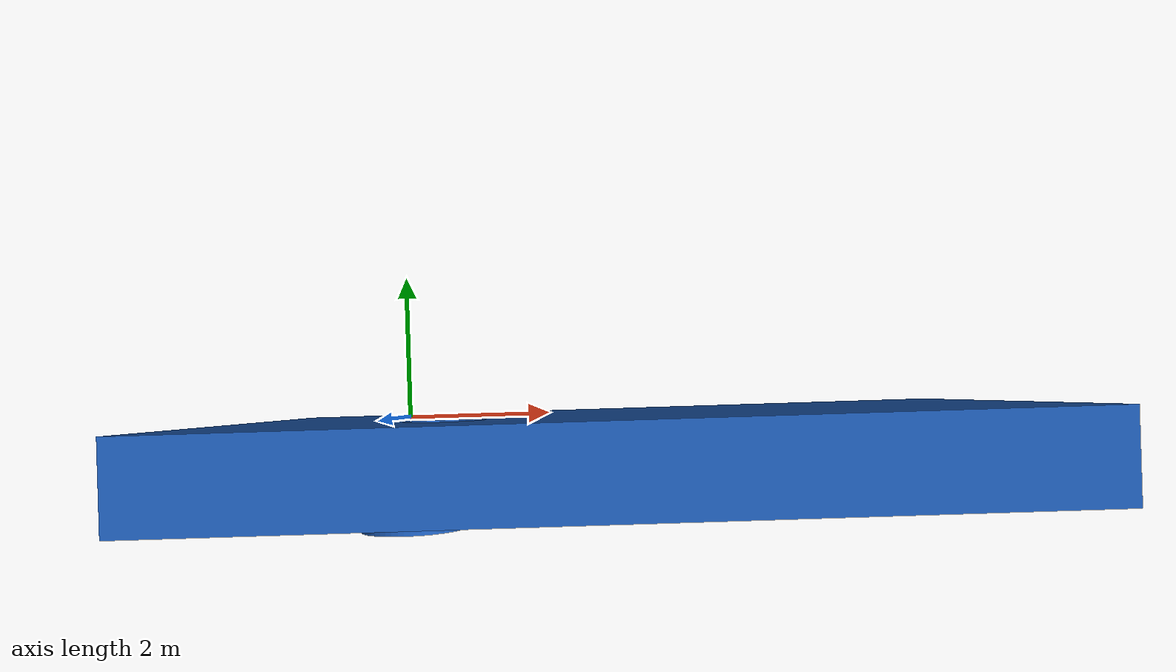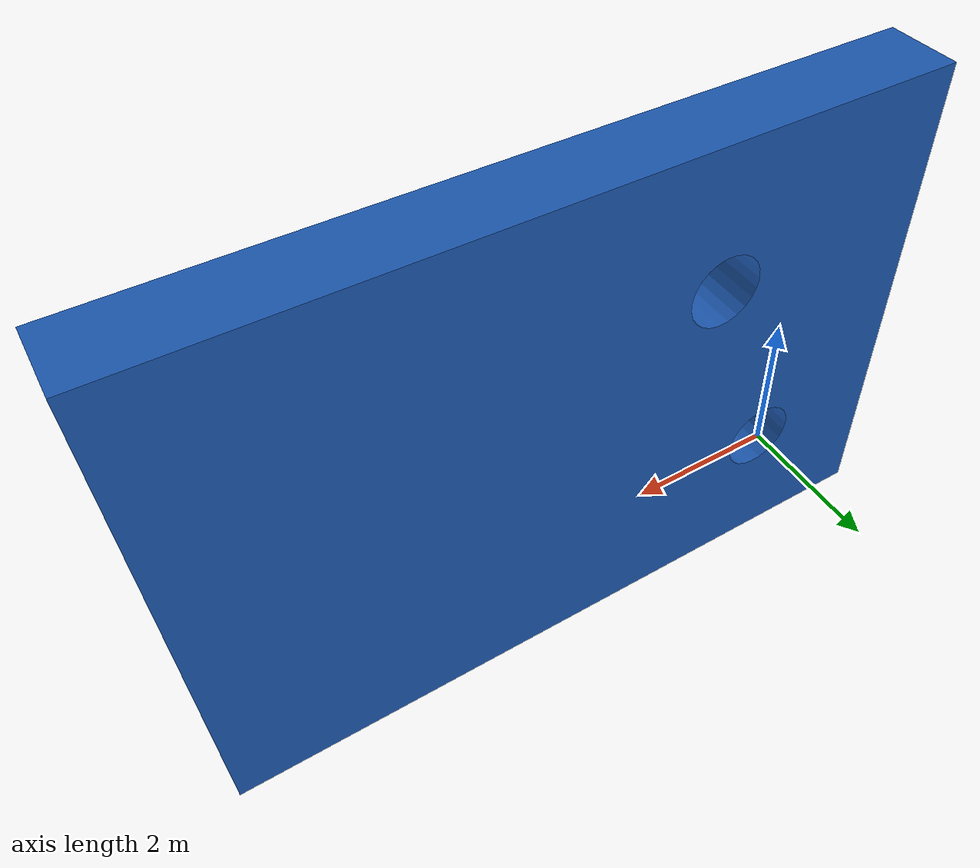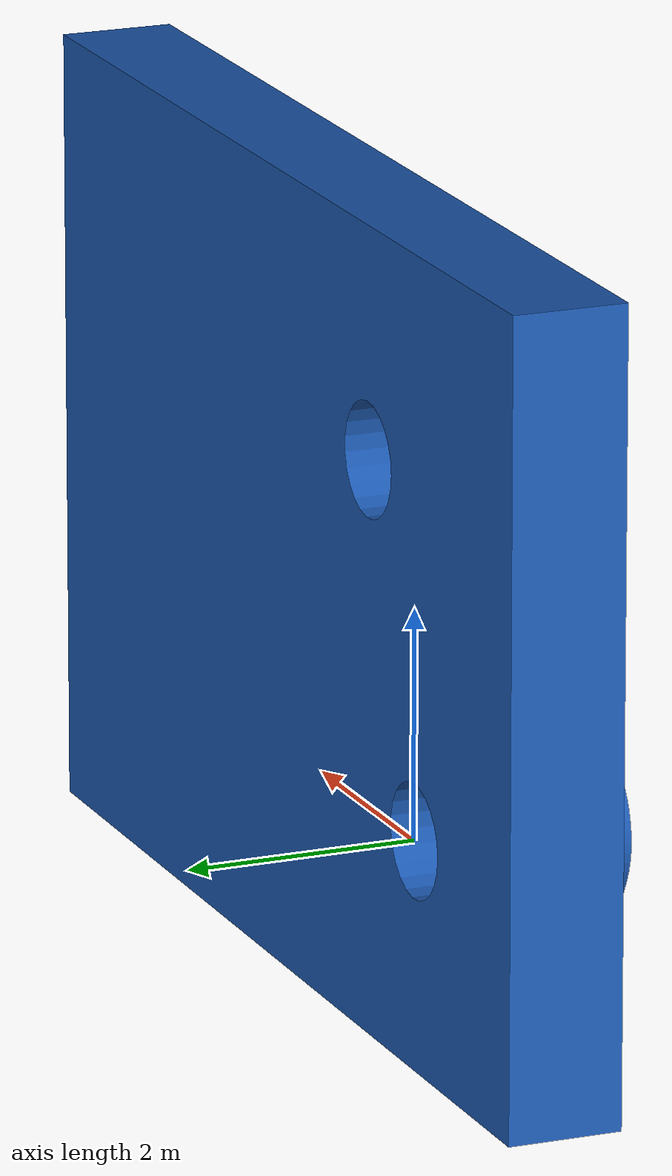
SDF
<?xml version='1.0'?>
<sdf version="1.6">
    <world name="default">
        <model name="oswald">
            <link name='body'>
                <inertial>
                    <mass>1</mass>
                    <inertia>
                        <ixx>0.166667</ixx>
                        <ixy>0</ixy>
                        <ixz>0</ixz>
                        <iyy>0.166667</iyy>
                        <iyz>0</iyz>
                        <izz>0.166667</izz>
                    </inertia>
                    <pose frame=''>0 0 0 0 -0 0</pose>
                </inertial>
                <pose frame=''>0 0 0 0 -0 0</pose>
                <gravity>1</gravity>
                <self_collide>0</self_collide>
                <kinematic>0</kinematic>
                <enable_wind>0</enable_wind>
                <visual name='visual'>
                <pose frame=''>-1.5 -1 -15.75 0 -0 0</pose>
                <geometry>
                  <mesh>
                    <uri>oswald_description/meshes/base_link.stl</uri>
                    <scale>1 1 1</scale>
                  </mesh>
                </geometry>
                <material>
                  <ambient>1 0 0 1</ambient>
                  <diffuse>0.109800 0.349000 0.694100 1</diffuse>
                  <specular>0.1 0.1 0.1 1</specular>
                  <emissive>0 0 0 0</emissive>
                 </material>
                <transparency>0</transparency>
                <cast_shadows>1</cast_shadows>
                </visual>
                <collision name='collision'>
                <pose frame=''>-1.5 -1 -15.75 0 -0 0</pose>
                <geometry>
                  <mesh>
                    <uri>oswald_description/meshes/base_link.stl</uri>
                    <scale>1 1 1</scale>
                  </mesh>
                </geometry>
                <surface>
                  <friction>
                    <torsional>
                      <coefficient>1</coefficient>
                      <patch_radius>0</patch_radius>
                      <surface_radius>0</surface_radius>
                      <use_patch_radius>1</use_patch_radius>
                    </torsional>
                  </friction>
                  <bounce>
                    <restitution_coefficient>0</restitution_coefficient>
                    <threshold>1e+06</threshold>
                  </bounce>
                  <contact>
                    <collide_without_contact>0</collide_without_contact>
                    <collide_without_contact_bitmask>1</collide_without_contact_bitmask>
                    <collide_bitmask>1</collide_bitmask>
                  </contact>
                </surface>
                </collision>
            </link>
            <link name='left_recip'>
              <inertial>
                <mass>1</mass>
                <inertia>
                  <ixx>0.166667</ixx>
                  <ixy>0</ixy>
                  <ixz>0</ixz>
                  <iyy>0.166667</iyy>
                  <iyz>0</iyz>
                  <izz>0.166667</izz>
                </inertia>
                <pose frame=''>0 0 0 0 -0 0</pose>
              </inertial>
              <pose frame=''>-1.5 -1 -15.75 0 -0 0</pose>
              <gravity>1</gravity>
              <self_collide>0</self_collide>
              <kinematic>0</kinematic>
              <enable_wind>0</enable_wind>
              <visual name='visual'>
                <pose frame=''>0 0 0 0 -0 0</pose>
                <geometry>
                  <mesh>
                    <uri>oswald_description/meshes/recip.stl</uri>
                    <scale>1 1 1</scale>
                  </mesh>
                </geometry>
                <material>
                  <ambient>1 0 0 1</ambient>
                  <diffuse>0.109800 0.349000 0.694100 1</diffuse>
                  <specular>0.1 0.1 0.1 1</specular>
                  <emissive>0 0 0 0</emissive>
                 </material>
                <transparency>0</transparency>
                <cast_shadows>1</cast_shadows>
              </visual>
              <collision name='collision'>
                <pose frame=''>0 0 0 0 -0 0</pose>
                <geometry>
                  <mesh>
                    <uri>oswald_description/meshes/recip.stl</uri>
                    <scale>1 1 1</scale>
                  </mesh>
                </geometry>
                <surface>
                  <friction>
                    <torsional>
                      <coefficient>1</coefficient>
                      <patch_radius>0</patch_radius>
                      <surface_radius>0</surface_radius>
                      <use_patch_radius>1</use_patch_radius>
                    </torsional>
                  </friction>
                  <bounce>
                    <restitution_coefficient>0</restitution_coefficient>
                    <threshold>1e+06</threshold>
                  </bounce>
                  <contact>
                    <collide_without_contact>0</collide_without_contact>
                    <collide_without_contact_bitmask>1</collide_without_contact_bitmask>
                    <collide_bitmask>1</collide_bitmask>
                  </contact>
                </surface>
              </collision>
            </link>
            <joint name='body_left_recip' type='revolute'>
              <parent>body</parent>
              <child>left_recip</child>
              <pose frame=''>0 0 0 0 -0 0</pose>
              <axis>
                <xyz>0 1 0</xyz>
                <use_parent_model_frame>0</use_parent_model_frame>
                <limit>
                  <lower>-1.79769e+308</lower>
                  <upper>1.79769e+308</upper>
                  <effort>-1</effort>
                  <velocity>-1</velocity>
                </limit>
                <dynamics>
                  <spring_reference>0</spring_reference>
                  <spring_stiffness>0</spring_stiffness>
                  <damping>0</damping>
                  <friction>0</friction>
                </dynamics>
              </axis>
              <physics>
                <ode>
                  <limit>
                    <cfm>0</cfm>
                    <erp>0.2</erp>
                  </limit>
                  <suspension>
                    <cfm>0</cfm>
                    <erp>0.2</erp>
                  </suspension>
                </ode>
              </physics>
            </joint>

        </model>
    </world>
</sdf>
